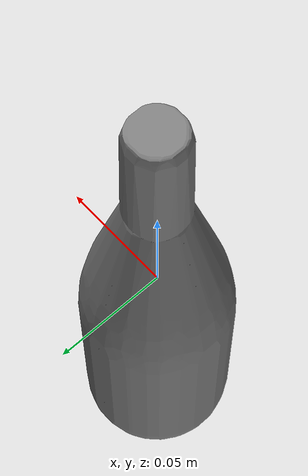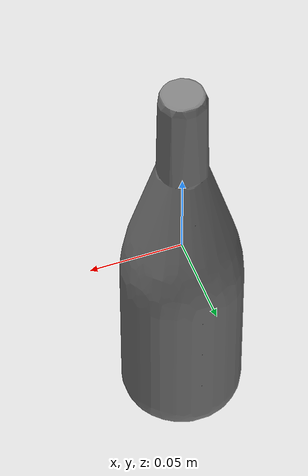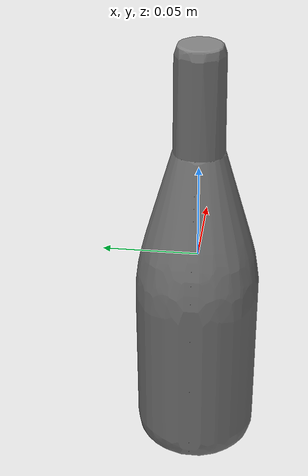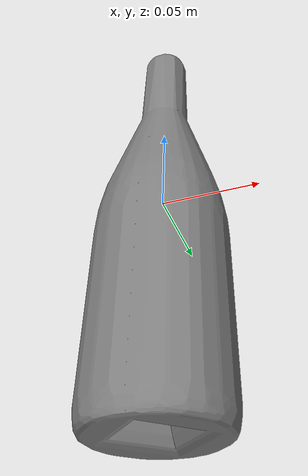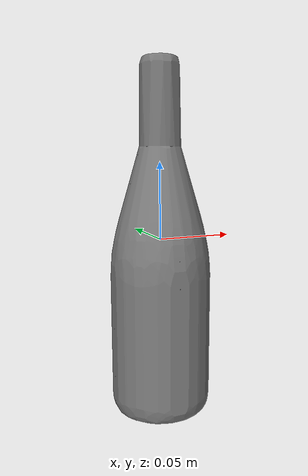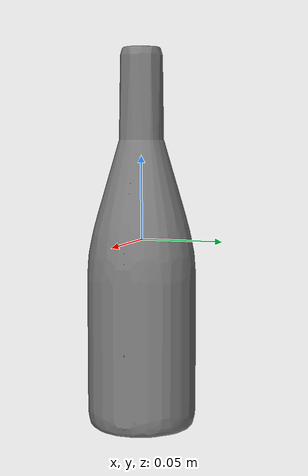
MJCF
<mujoco model="decomposed">
  <compiler angle="radian" meshdir="assets" />
  <default>
    <default class="visual">
      <geom type="mesh" contype="1" conaffinity="1" />
    </default>
    <default class="collision">
      <geom type="mesh" contype="1" conaffinity="1" />
    </default>
  </default>
  <asset>
    <mesh file="../../meshh/sem-Bottle-437678d4bc6be981c8724d5673a063a6/coacd/decomposed/decomposed.obj" scale="0.11999999731779099 0.11999999731779099 0.11999999731779099" />
  </asset>
  <worldbody>
    <body name="decomposed">
      <joint type="free" />
      <geom mesh="decomposed" class="visual" friction=".1 .5 .1" mass="0" />
      <geom mesh="decomposed" class="collision" friction=".1 .5 .1" mass="0.002" />
    </body>
  </worldbody>
</mujoco>
